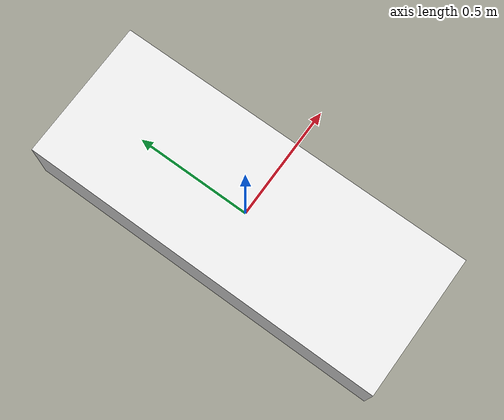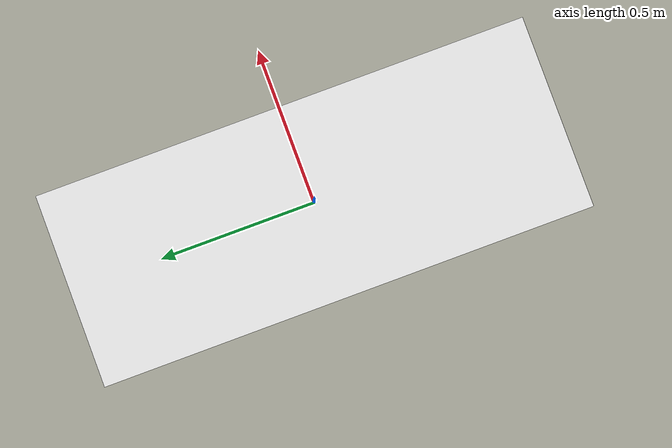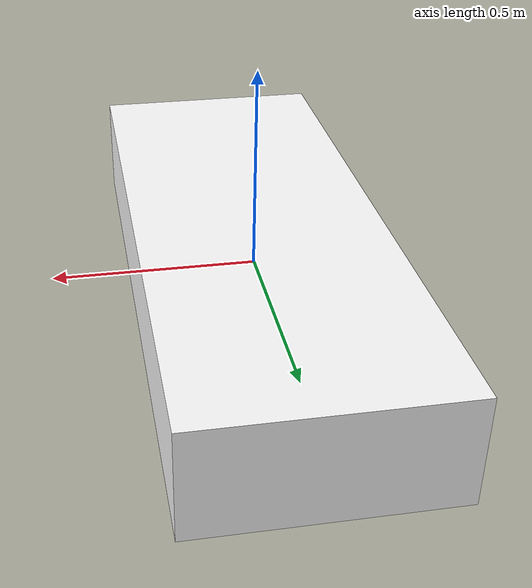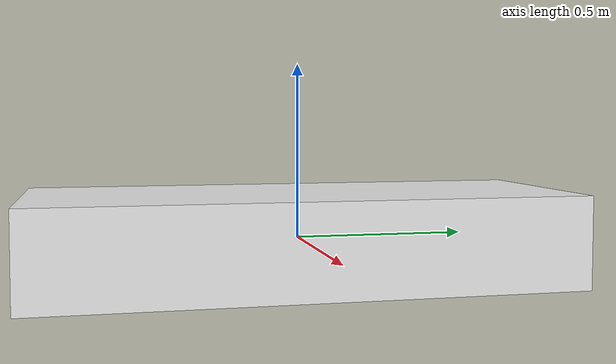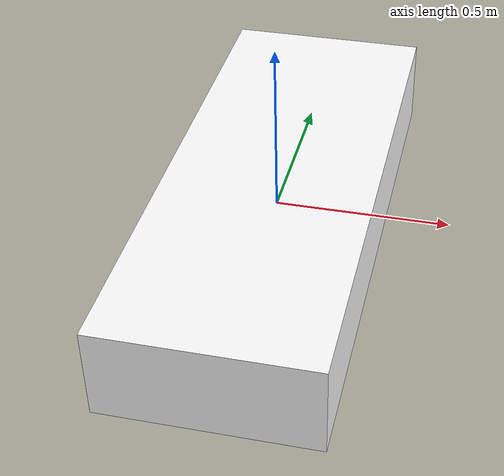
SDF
<?xml version="1.0"?>
<sdf version="1.9">
  <model name="table">
    <static>true</static>
    <link name="table_link">
      <inertial>
        <mass>8.000000</mass>
        <inertia>
          <ixx>0.008000000</ixx>
          <iyy>0.008000000</iyy>
          <izz>0.008000000</izz>
          <ixy>0</ixy>
          <ixz>0</ixz>
          <iyz>0</iyz>
        </inertia>
      </inertial>
      <visual name="table_visual">
        <geometry>
          <mesh>
            <uri>meshes/table.obj</uri>
          </mesh>
        </geometry>
        <material>
          <ambient>0.250000 0.250000 0.250000 1.000000</ambient>
          <diffuse>1.000000 1.000000 1.000000 1.000000</diffuse>
          <specular>0.120000 0.120000 0.120000 1.000000</specular>
        </material>
      </visual>
      <collision name="table_table_collision">
        <pose>0.000000000 0.000000000 0.000000000 0 0 0</pose>
        <geometry>
          <box>
            <size>0.600000024 1.539999962 0.264566004</size>
          </box>
        </geometry>
        <max_contacts>20</max_contacts>
        <surface>
          <friction>
            <ode>
              <mu>8.0</mu>
              <mu2>8.0</mu2>
              <slip1>0.0</slip1>
              <slip2>0.0</slip2>
            </ode>
            <torsional>
              <coefficient>1.0</coefficient>
              <use_patch_radius>true</use_patch_radius>
              <patch_radius>0.020000</patch_radius>
              <surface_radius>0.010000</surface_radius>
              <ode>
                <slip>0.0</slip>
              </ode>
            </torsional>
          </friction>
          <contact>
            <ode>
              <soft_cfm>0.000000</soft_cfm>
              <soft_erp>0.800000</soft_erp>
              <kp>1000000.000000</kp>
              <kd>100.000000</kd>
              <max_vel>0.010000</max_vel>
              <min_depth>0.002000</min_depth>
            </ode>
          </contact>
        </surface>
      </collision>
    </link>
  </model>
</sdf>
